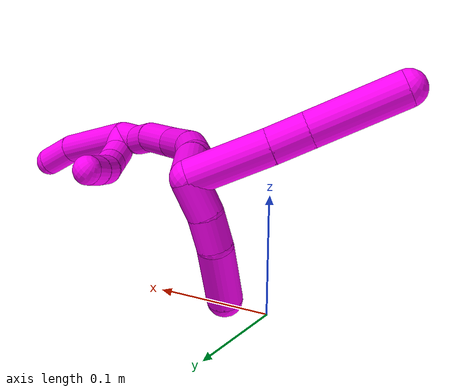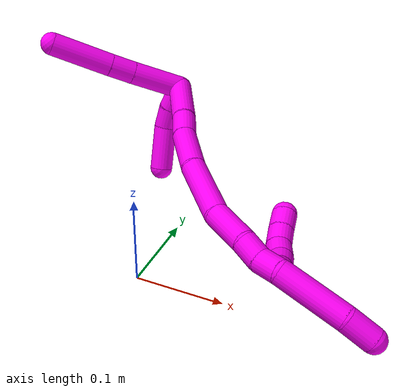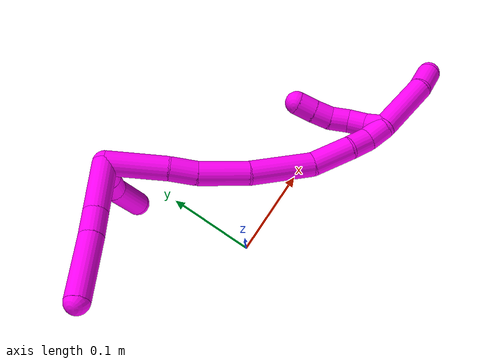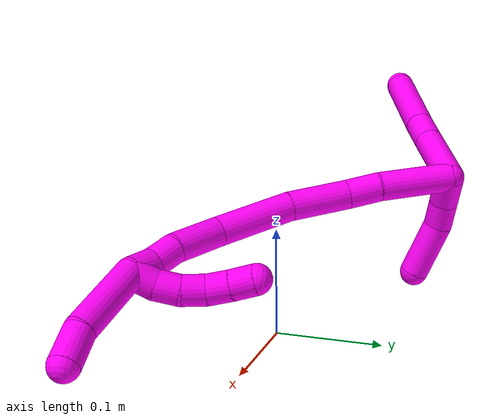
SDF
<sdf version="1.7">
 <world name="default">
  <model name="10">
   <static>0</static>
   <link name="10">
    <collision name="collision-cylinder-e_1_2_8">
     <pose>-0.000508 -0.015796 0.023423 0.593322 -0.017974 -0.005494</pose>
     <geometry><cylinder><radius>0.0125</radius><length>0.056511</length></cylinder></geometry>
     <surface>
      <friction><ode><mu>1.16</mu><mu2>1.16</mu2><slip1>0</slip1><slip2>0</slip2></ode></friction>
      <contact><ode><kp>1e+06</kp><kd>1</kd><max_vel>0</max_vel><min_depth>0.001</min_depth></ode></contact>
     </surface>
    </collision>
    <visual name="visual-cylinder-e_1_2_8">
     <pose>-0.000508 -0.015796 0.023423 0.593322 -0.017974 -0.005494</pose>
     <geometry><cylinder><radius>0.0125</radius><length>0.056511</length></cylinder></geometry>
     <material><ambient>1 0 0.964706 1</ambient></material>
    </visual>
    <collision name="collision-cylinder-e_2_8_9">
     <pose>-0.000942 -0.038829 0.058089 0.571952 0.005483 0.001612</pose>
     <geometry><cylinder><radius>0.0125</radius><length>0.026744</length></cylinder></geometry>
     <surface>
      <friction><ode><mu>1.16</mu><mu2>1.16</mu2><slip1>0</slip1><slip2>0</slip2></ode></friction>
      <contact><ode><kp>1e+06</kp><kd>1</kd><max_vel>0</max_vel><min_depth>0.001</min_depth></ode></contact>
     </surface>
    </collision>
    <visual name="visual-cylinder-e_2_8_9">
     <pose>-0.000942 -0.038829 0.058089 0.571952 0.005483 0.001612</pose>
     <geometry><cylinder><radius>0.0125</radius><length>0.026744</length></cylinder></geometry>
     <material><ambient>1 0 0.964706 1</ambient></material>
    </visual>
    <collision name="collision-cylinder-e_3_9_6">
     <pose>-0.001396 -0.063473 0.097801 0.54875 -0.015793 -0.004445</pose>
     <geometry><cylinder><radius>0.0125</radius><length>0.066745</length></cylinder></geometry>
     <surface>
      <friction><ode><mu>1.16</mu><mu2>1.16</mu2><slip1>0</slip1><slip2>0</slip2></ode></friction>
      <contact><ode><kp>1e+06</kp><kd>1</kd><max_vel>0</max_vel><min_depth>0.001</min_depth></ode></contact>
     </surface>
    </collision>
    <visual name="visual-cylinder-e_3_9_6">
     <pose>-0.001396 -0.063473 0.097801 0.54875 -0.015793 -0.004445</pose>
     <geometry><cylinder><radius>0.0125</radius><length>0.066745</length></cylinder></geometry>
     <material><ambient>1 0 0.964706 1</ambient></material>
    </visual>
    <collision name="collision-cylinder-e_1_2_10">
     <pose>-0.006923 -0.009953 -0.00612 2.1221 -0.534904 -0.911506</pose>
     <geometry><cylinder><radius>0.0125</radius><length>0.027163</length></cylinder></geometry>
     <surface>
      <friction><ode><mu>1.16</mu><mu2>1.16</mu2><slip1>0</slip1><slip2>0</slip2></ode></friction>
      <contact><ode><kp>1e+06</kp><kd>1</kd><max_vel>0</max_vel><min_depth>0.001</min_depth></ode></contact>
     </surface>
    </collision>
    <visual name="visual-cylinder-e_1_2_10">
     <pose>-0.006923 -0.009953 -0.00612 2.1221 -0.534904 -0.911506</pose>
     <geometry><cylinder><radius>0.0125</radius><length>0.027163</length></cylinder></geometry>
     <material><ambient>1 0 0.964706 1</ambient></material>
    </visual>
    <collision name="collision-cylinder-e_2_10_11">
     <pose>-0.018923 -0.027918 -0.019421 2.30152 -0.440888 -0.930084</pose>
     <geometry><cylinder><radius>0.0125</radius><length>0.023791</length></cylinder></geometry>
     <surface>
      <friction><ode><mu>1.16</mu><mu2>1.16</mu2><slip1>0</slip1><slip2>0</slip2></ode></friction>
      <contact><ode><kp>1e+06</kp><kd>1</kd><max_vel>0</max_vel><min_depth>0.001</min_depth></ode></contact>
     </surface>
    </collision>
    <visual name="visual-cylinder-e_2_10_11">
     <pose>-0.018923 -0.027918 -0.019421 2.30152 -0.440888 -0.930084</pose>
     <geometry><cylinder><radius>0.0125</radius><length>0.023791</length></cylinder></geometry>
     <material><ambient>1 0 0.964706 1</ambient></material>
    </visual>
    <collision name="collision-cylinder-e_3_11_5">
     <pose>-0.02734 -0.052692 -0.044186 2.38016 -0.136657 -0.338692</pose>
     <geometry><cylinder><radius>0.0125</radius><length>0.049045</length></cylinder></geometry>
     <surface>
      <friction><ode><mu>1.16</mu><mu2>1.16</mu2><slip1>0</slip1><slip2>0</slip2></ode></friction>
      <contact><ode><kp>1e+06</kp><kd>1</kd><max_vel>0</max_vel><min_depth>0.001</min_depth></ode></contact>
     </surface>
    </collision>
    <visual name="visual-cylinder-e_3_11_5">
     <pose>-0.02734 -0.052692 -0.044186 2.38016 -0.136657 -0.338692</pose>
     <geometry><cylinder><radius>0.0125</radius><length>0.049045</length></cylinder></geometry>
     <material><ambient>1 0 0.964706 1</ambient></material>
    </visual>
    <collision name="collision-cylinder-e_1_2_12">
     <pose>0.025633 -0.015385 -0.010108 2.15209 0.947972 1.52042</pose>
     <geometry><cylinder><radius>0.0125</radius><length>0.063116</length></cylinder></geometry>
     <surface>
      <friction><ode><mu>1.16</mu><mu2>1.16</mu2><slip1>0</slip1><slip2>0</slip2></ode></friction>
      <contact><ode><kp>1e+06</kp><kd>1</kd><max_vel>0</max_vel><min_depth>0.001</min_depth></ode></contact>
     </surface>
    </collision>
    <visual name="visual-cylinder-e_1_2_12">
     <pose>0.025633 -0.015385 -0.010108 2.15209 0.947972 1.52042</pose>
     <geometry><cylinder><radius>0.0125</radius><length>0.063116</length></cylinder></geometry>
     <material><ambient>1 0 0.964706 1</ambient></material>
    </visual>
    <collision name="collision-cylinder-e_2_12_13">
     <pose>0.061676 -0.038971 -0.025557 2.148 0.816334 1.34663</pose>
     <geometry><cylinder><radius>0.0125</radius><length>0.028575</length></cylinder></geometry>
     <surface>
      <friction><ode><mu>1.16</mu><mu2>1.16</mu2><slip1>0</slip1><slip2>0</slip2></ode></friction>
      <contact><ode><kp>1e+06</kp><kd>1</kd><max_vel>0</max_vel><min_depth>0.001</min_depth></ode></contact>
     </surface>
    </collision>
    <visual name="visual-cylinder-e_2_12_13">
     <pose>0.061676 -0.038971 -0.025557 2.148 0.816334 1.34663</pose>
     <geometry><cylinder><radius>0.0125</radius><length>0.028575</length></cylinder></geometry>
     <material><ambient>1 0 0.964706 1</ambient></material>
    </visual>
    <collision name="collision-cylinder-e_3_13_14">
     <pose>0.093183 -0.058157 -0.041522 2.33952 0.943848 1.75514</pose>
     <geometry><cylinder><radius>0.0125</radius><length>0.052101</length></cylinder></geometry>
     <surface>
      <friction><ode><mu>1.16</mu><mu2>1.16</mu2><slip1>0</slip1><slip2>0</slip2></ode></friction>
      <contact><ode><kp>1e+06</kp><kd>1</kd><max_vel>0</max_vel><min_depth>0.001</min_depth></ode></contact>
     </surface>
    </collision>
    <visual name="visual-cylinder-e_3_13_14">
     <pose>0.093183 -0.058157 -0.041522 2.33952 0.943848 1.75514</pose>
     <geometry><cylinder><radius>0.0125</radius><length>0.052101</length></cylinder></geometry>
     <material><ambient>1 0 0.964706 1</ambient></material>
    </visual>
    <collision name="collision-cylinder-e_4_14_15">
     <pose>0.139908 -0.079952 -0.07034 2.6055 0.880565 2.08597</pose>
     <geometry><cylinder><radius>0.0125</radius><length>0.066473</length></cylinder></geometry>
     <surface>
      <friction><ode><mu>1.16</mu><mu2>1.16</mu2><slip1>0</slip1><slip2>0</slip2></ode></friction>
      <contact><ode><kp>1e+06</kp><kd>1</kd><max_vel>0</max_vel><min_depth>0.001</min_depth></ode></contact>
     </surface>
    </collision>
    <visual name="visual-cylinder-e_4_14_15">
     <pose>0.139908 -0.079952 -0.07034 2.6055 0.880565 2.08597</pose>
     <geometry><cylinder><radius>0.0125</radius><length>0.066473</length></cylinder></geometry>
     <material><ambient>1 0 0.964706 1</ambient></material>
    </visual>
    <collision name="collision-cylinder-e_5_15_16">
     <pose>0.182805 -0.092146 -0.101612 3.0361 0.919905 2.92924</pose>
     <geometry><cylinder><radius>0.0125</radius><length>0.043413</length></cylinder></geometry>
     <surface>
      <friction><ode><mu>1.16</mu><mu2>1.16</mu2><slip1>0</slip1><slip2>0</slip2></ode></friction>
      <contact><ode><kp>1e+06</kp><kd>1</kd><max_vel>0</max_vel><min_depth>0.001</min_depth></ode></contact>
     </surface>
    </collision>
    <visual name="visual-cylinder-e_5_15_16">
     <pose>0.182805 -0.092146 -0.101612 3.0361 0.919905 2.92924</pose>
     <geometry><cylinder><radius>0.0125</radius><length>0.043413</length></cylinder></geometry>
     <material><ambient>1 0 0.964706 1</ambient></material>
    </visual>
    <collision name="collision-cylinder-e_6_16_17">
     <pose>0.207629 -0.09467 -0.123505 3.01307 0.704609 2.79504</pose>
     <geometry><cylinder><radius>0.0125</radius><length>0.023329</length></cylinder></geometry>
     <surface>
      <friction><ode><mu>1.16</mu><mu2>1.16</mu2><slip1>0</slip1><slip2>0</slip2></ode></friction>
      <contact><ode><kp>1e+06</kp><kd>1</kd><max_vel>0</max_vel><min_depth>0.001</min_depth></ode></contact>
     </surface>
    </collision>
    <visual name="visual-cylinder-e_6_16_17">
     <pose>0.207629 -0.09467 -0.123505 3.01307 0.704609 2.79504</pose>
     <geometry><cylinder><radius>0.0125</radius><length>0.023329</length></cylinder></geometry>
     <material><ambient>1 0 0.964706 1</ambient></material>
    </visual>
    <collision name="collision-cylinder-e_7_17_1">
     <pose>0.224053 -0.09399 -0.139404 -2.89036 0.881065 -2.61815</pose>
     <geometry><cylinder><radius>0.0125</radius><length>0.022992</length></cylinder></geometry>
     <surface>
      <friction><ode><mu>1.16</mu><mu2>1.16</mu2><slip1>0</slip1><slip2>0</slip2></ode></friction>
      <contact><ode><kp>1e+06</kp><kd>1</kd><max_vel>0</max_vel><min_depth>0.001</min_depth></ode></contact>
     </surface>
    </collision>
    <visual name="visual-cylinder-e_7_17_1">
     <pose>0.224053 -0.09399 -0.139404 -2.89036 0.881065 -2.61815</pose>
     <geometry><cylinder><radius>0.0125</radius><length>0.022992</length></cylinder></geometry>
     <material><ambient>1 0 0.964706 1</ambient></material>
    </visual>
    <collision name="collision-cylinder-e_1_1_18">
     <pose>0.223664 -0.089333 -0.148992 -2.29351 -1.1827 1.95786</pose>
     <geometry><cylinder><radius>0.0125</radius><length>0.02</length></cylinder></geometry>
     <surface>
      <friction><ode><mu>1.16</mu><mu2>1.16</mu2><slip1>0</slip1><slip2>0</slip2></ode></friction>
      <contact><ode><kp>1e+06</kp><kd>1</kd><max_vel>0</max_vel><min_depth>0.001</min_depth></ode></contact>
     </surface>
    </collision>
    <visual name="visual-cylinder-e_1_1_18">
     <pose>0.223664 -0.089333 -0.148992 -2.29351 -1.1827 1.95786</pose>
     <geometry><cylinder><radius>0.0125</radius><length>0.02</length></cylinder></geometry>
     <material><ambient>1 0 0.964706 1</ambient></material>
    </visual>
    <collision name="collision-cylinder-e_2_18_19">
     <pose>0.205774 -0.081482 -0.152065 -1.68389 -1.04201 1.14255</pose>
     <geometry><cylinder><radius>0.0125</radius><length>0.02</length></cylinder></geometry>
     <surface>
      <friction><ode><mu>1.16</mu><mu2>1.16</mu2><slip1>0</slip1><slip2>0</slip2></ode></friction>
      <contact><ode><kp>1e+06</kp><kd>1</kd><max_vel>0</max_vel><min_depth>0.001</min_depth></ode></contact>
     </surface>
    </collision>
    <visual name="visual-cylinder-e_2_18_19">
     <pose>0.205774 -0.081482 -0.152065 -1.68389 -1.04201 1.14255</pose>
     <geometry><cylinder><radius>0.0125</radius><length>0.02</length></cylinder></geometry>
     <material><ambient>1 0 0.964706 1</ambient></material>
    </visual>
    <collision name="collision-cylinder-e_3_19_20">
     <pose>0.188698 -0.071431 -0.150803 -1.2223 -1.005 0.735076</pose>
     <geometry><cylinder><radius>0.0125</radius><length>0.02</length></cylinder></geometry>
     <surface>
      <friction><ode><mu>1.16</mu><mu2>1.16</mu2><slip1>0</slip1><slip2>0</slip2></ode></friction>
      <contact><ode><kp>1e+06</kp><kd>1</kd><max_vel>0</max_vel><min_depth>0.001</min_depth></ode></contact>
     </surface>
    </collision>
    <visual name="visual-cylinder-e_3_19_20">
     <pose>0.188698 -0.071431 -0.150803 -1.2223 -1.005 0.735076</pose>
     <geometry><cylinder><radius>0.0125</radius><length>0.02</length></cylinder></geometry>
     <material><ambient>1 0 0.964706 1</ambient></material>
    </visual>
    <collision name="collision-cylinder-e_4_20_21">
     <pose>0.173858 -0.05913 -0.146461 -1.2378 -0.694348 0.50445</pose>
     <geometry><cylinder><radius>0.0125</radius><length>0.02</length></cylinder></geometry>
     <surface>
      <friction><ode><mu>1.16</mu><mu2>1.16</mu2><slip1>0</slip1><slip2>0</slip2></ode></friction>
      <contact><ode><kp>1e+06</kp><kd>1</kd><max_vel>0</max_vel><min_depth>0.001</min_depth></ode></contact>
     </surface>
    </collision>
    <visual name="visual-cylinder-e_4_20_21">
     <pose>0.173858 -0.05913 -0.146461 -1.2378 -0.694348 0.50445</pose>
     <geometry><cylinder><radius>0.0125</radius><length>0.02</length></cylinder></geometry>
     <material><ambient>1 0 0.964706 1</ambient></material>
    </visual>
    <collision name="collision-cylinder-e_5_21_4">
     <pose>0.161729 -0.044117 -0.141283 -1.23948 -0.610133 0.442026</pose>
     <geometry><cylinder><radius>0.0125</radius><length>0.02</length></cylinder></geometry>
     <surface>
      <friction><ode><mu>1.16</mu><mu2>1.16</mu2><slip1>0</slip1><slip2>0</slip2></ode></friction>
      <contact><ode><kp>1e+06</kp><kd>1</kd><max_vel>0</max_vel><min_depth>0.001</min_depth></ode></contact>
     </surface>
    </collision>
    <visual name="visual-cylinder-e_5_21_4">
     <pose>0.161729 -0.044117 -0.141283 -1.23948 -0.610133 0.442026</pose>
     <geometry><cylinder><radius>0.0125</radius><length>0.02</length></cylinder></geometry>
     <material><ambient>1 0 0.964706 1</ambient></material>
    </visual>
    <collision name="collision-cylinder-e_1_1_22">
     <pose>0.250628 -0.086053 -0.175803 -2.93581 0.533999 -2.41969</pose>
     <geometry><cylinder><radius>0.0125</radius><length>0.069578</length></cylinder></geometry>
     <surface>
      <friction><ode><mu>1.16</mu><mu2>1.16</mu2><slip1>0</slip1><slip2>0</slip2></ode></friction>
      <contact><ode><kp>1e+06</kp><kd>1</kd><max_vel>0</max_vel><min_depth>0.001</min_depth></ode></contact>
     </surface>
    </collision>
    <visual name="visual-cylinder-e_1_1_22">
     <pose>0.250628 -0.086053 -0.175803 -2.93581 0.533999 -2.41969</pose>
     <geometry><cylinder><radius>0.0125</radius><length>0.069578</length></cylinder></geometry>
     <material><ambient>1 0 0.964706 1</ambient></material>
    </visual>
    <collision name="collision-cylinder-e_2_22_3">
     <pose>0.272308 -0.077224 -0.219548 -2.95597 0.264272 -1.91971</pose>
     <geometry><cylinder><radius>0.0125</radius><length>0.030422</length></cylinder></geometry>
     <surface>
      <friction><ode><mu>1.16</mu><mu2>1.16</mu2><slip1>0</slip1><slip2>0</slip2></ode></friction>
      <contact><ode><kp>1e+06</kp><kd>1</kd><max_vel>0</max_vel><min_depth>0.001</min_depth></ode></contact>
     </surface>
    </collision>
    <visual name="visual-cylinder-e_2_22_3">
     <pose>0.272308 -0.077224 -0.219548 -2.95597 0.264272 -1.91971</pose>
     <geometry><cylinder><radius>0.0125</radius><length>0.030422</length></cylinder></geometry>
     <material><ambient>1 0 0.964706 1</ambient></material>
    </visual>
    <collision name="collision-sphere-3">
     <pose>0.276281 -0.074514 -0.233978 0 -0 0</pose>
     <geometry><sphere><radius>0.0125</radius></sphere></geometry>
     <surface>
      <friction><ode><mu>1.16</mu><mu2>1.16</mu2><slip1>0</slip1><slip2>0</slip2></ode></friction>
      <contact><ode><kp>1e+06</kp><kd>1</kd><max_vel>0</max_vel><min_depth>0.001</min_depth></ode></contact>
     </surface>
    </collision>
    <visual name="visual-sphere-3">
     <pose>0.276281 -0.074514 -0.233978 0 -0 0</pose>
     <geometry><sphere><radius>0.0125</radius></sphere></geometry>
     <material><ambient>1 0 0.964706 1</ambient></material>
    </visual>
    <collision name="collision-sphere-22">
     <pose>0.268335 -0.079934 -0.205117 0 -0 0</pose>
     <geometry><sphere><radius>0.0125</radius></sphere></geometry>
     <surface>
      <friction><ode><mu>1.16</mu><mu2>1.16</mu2><slip1>0</slip1><slip2>0</slip2></ode></friction>
      <contact><ode><kp>1e+06</kp><kd>1</kd><max_vel>0</max_vel><min_depth>0.001</min_depth></ode></contact>
     </surface>
    </collision>
    <visual name="visual-sphere-22">
     <pose>0.268335 -0.079934 -0.205117 0 -0 0</pose>
     <geometry><sphere><radius>0.0125</radius></sphere></geometry>
     <material><ambient>1 0 0.964706 1</ambient></material>
    </visual>
    <collision name="collision-sphere-4">
     <pose>0.155999 -0.036367 -0.138617 0 -0 0</pose>
     <geometry><sphere><radius>0.0125</radius></sphere></geometry>
     <surface>
      <friction><ode><mu>1.16</mu><mu2>1.16</mu2><slip1>0</slip1><slip2>0</slip2></ode></friction>
      <contact><ode><kp>1e+06</kp><kd>1</kd><max_vel>0</max_vel><min_depth>0.001</min_depth></ode></contact>
     </surface>
    </collision>
    <visual name="visual-sphere-4">
     <pose>0.155999 -0.036367 -0.138617 0 -0 0</pose>
     <geometry><sphere><radius>0.0125</radius></sphere></geometry>
     <material><ambient>1 0 0.964706 1</ambient></material>
    </visual>
    <collision name="collision-sphere-21">
     <pose>0.167459 -0.051867 -0.143949 0 -0 0</pose>
     <geometry><sphere><radius>0.0125</radius></sphere></geometry>
     <surface>
      <friction><ode><mu>1.16</mu><mu2>1.16</mu2><slip1>0</slip1><slip2>0</slip2></ode></friction>
      <contact><ode><kp>1e+06</kp><kd>1</kd><max_vel>0</max_vel><min_depth>0.001</min_depth></ode></contact>
     </surface>
    </collision>
    <visual name="visual-sphere-21">
     <pose>0.167459 -0.051867 -0.143949 0 -0 0</pose>
     <geometry><sphere><radius>0.0125</radius></sphere></geometry>
     <material><ambient>1 0 0.964706 1</ambient></material>
    </visual>
    <collision name="collision-sphere-20">
     <pose>0.180257 -0.066392 -0.148973 0 -0 0</pose>
     <geometry><sphere><radius>0.0125</radius></sphere></geometry>
     <surface>
      <friction><ode><mu>1.16</mu><mu2>1.16</mu2><slip1>0</slip1><slip2>0</slip2></ode></friction>
      <contact><ode><kp>1e+06</kp><kd>1</kd><max_vel>0</max_vel><min_depth>0.001</min_depth></ode></contact>
     </surface>
    </collision>
    <visual name="visual-sphere-20">
     <pose>0.180257 -0.066392 -0.148973 0 -0 0</pose>
     <geometry><sphere><radius>0.0125</radius></sphere></geometry>
     <material><ambient>1 0 0.964706 1</ambient></material>
    </visual>
    <collision name="collision-sphere-11">
     <pose>-0.024 -0.03593 -0.026601 0 -0 0</pose>
     <geometry><sphere><radius>0.0125</radius></sphere></geometry>
     <surface>
      <friction><ode><mu>1.16</mu><mu2>1.16</mu2><slip1>0</slip1><slip2>0</slip2></ode></friction>
      <contact><ode><kp>1e+06</kp><kd>1</kd><max_vel>0</max_vel><min_depth>0.001</min_depth></ode></contact>
     </surface>
    </collision>
    <visual name="visual-sphere-11">
     <pose>-0.024 -0.03593 -0.026601 0 -0 0</pose>
     <geometry><sphere><radius>0.0125</radius></sphere></geometry>
     <material><ambient>1 0 0.964706 1</ambient></material>
    </visual>
    <collision name="collision-sphere-10">
     <pose>-0.013847 -0.019907 -0.012241 0 -0 0</pose>
     <geometry><sphere><radius>0.0125</radius></sphere></geometry>
     <surface>
      <friction><ode><mu>1.16</mu><mu2>1.16</mu2><slip1>0</slip1><slip2>0</slip2></ode></friction>
      <contact><ode><kp>1e+06</kp><kd>1</kd><max_vel>0</max_vel><min_depth>0.001</min_depth></ode></contact>
     </surface>
    </collision>
    <visual name="visual-sphere-10">
     <pose>-0.013847 -0.019907 -0.012241 0 -0 0</pose>
     <geometry><sphere><radius>0.0125</radius></sphere></geometry>
     <material><ambient>1 0 0.964706 1</ambient></material>
    </visual>
    <collision name="collision-sphere-6">
     <pose>-0.001923 -0.080878 0.12627 0 -0 0</pose>
     <geometry><sphere><radius>0.0125</radius></sphere></geometry>
     <surface>
      <friction><ode><mu>1.16</mu><mu2>1.16</mu2><slip1>0</slip1><slip2>0</slip2></ode></friction>
      <contact><ode><kp>1e+06</kp><kd>1</kd><max_vel>0</max_vel><min_depth>0.001</min_depth></ode></contact>
     </surface>
    </collision>
    <visual name="visual-sphere-6">
     <pose>-0.001923 -0.080878 0.12627 0 -0 0</pose>
     <geometry><sphere><radius>0.0125</radius></sphere></geometry>
     <material><ambient>1 0 0.964706 1</ambient></material>
    </visual>
    <collision name="collision-sphere-9">
     <pose>-0.000869 -0.046067 0.069332 0 -0 0</pose>
     <geometry><sphere><radius>0.0125</radius></sphere></geometry>
     <surface>
      <friction><ode><mu>1.16</mu><mu2>1.16</mu2><slip1>0</slip1><slip2>0</slip2></ode></friction>
      <contact><ode><kp>1e+06</kp><kd>1</kd><max_vel>0</max_vel><min_depth>0.001</min_depth></ode></contact>
     </surface>
    </collision>
    <visual name="visual-sphere-9">
     <pose>-0.000869 -0.046067 0.069332 0 -0 0</pose>
     <geometry><sphere><radius>0.0125</radius></sphere></geometry>
     <material><ambient>1 0 0.964706 1</ambient></material>
    </visual>
    <collision name="collision-sphere-2">
     <geometry><sphere><radius>0.0125</radius></sphere></geometry>
     <surface>
      <friction><ode><mu>1.16</mu><mu2>1.16</mu2><slip1>0</slip1><slip2>0</slip2></ode></friction>
      <contact><ode><kp>1e+06</kp><kd>1</kd><max_vel>0</max_vel><min_depth>0.001</min_depth></ode></contact>
     </surface>
    </collision>
    <visual name="visual-sphere-2">
     <geometry><sphere><radius>0.0125</radius></sphere></geometry>
     <material><ambient>1 0 0.964706 1</ambient></material>
    </visual>
    <collision name="collision-sphere-19">
     <pose>0.19714 -0.07647 -0.152634 0 -0 0</pose>
     <geometry><sphere><radius>0.0125</radius></sphere></geometry>
     <surface>
      <friction><ode><mu>1.16</mu><mu2>1.16</mu2><slip1>0</slip1><slip2>0</slip2></ode></friction>
      <contact><ode><kp>1e+06</kp><kd>1</kd><max_vel>0</max_vel><min_depth>0.001</min_depth></ode></contact>
     </surface>
    </collision>
    <visual name="visual-sphere-19">
     <pose>0.19714 -0.07647 -0.152634 0 -0 0</pose>
     <geometry><sphere><radius>0.0125</radius></sphere></geometry>
     <material><ambient>1 0 0.964706 1</ambient></material>
    </visual>
    <collision name="collision-sphere-8">
     <pose>-0.001016 -0.031592 0.046845 0 -0 0</pose>
     <geometry><sphere><radius>0.0125</radius></sphere></geometry>
     <surface>
      <friction><ode><mu>1.16</mu><mu2>1.16</mu2><slip1>0</slip1><slip2>0</slip2></ode></friction>
      <contact><ode><kp>1e+06</kp><kd>1</kd><max_vel>0</max_vel><min_depth>0.001</min_depth></ode></contact>
     </surface>
    </collision>
    <visual name="visual-sphere-8">
     <pose>-0.001016 -0.031592 0.046845 0 -0 0</pose>
     <geometry><sphere><radius>0.0125</radius></sphere></geometry>
     <material><ambient>1 0 0.964706 1</ambient></material>
    </visual>
    <collision name="collision-sphere-5">
     <pose>-0.030681 -0.069453 -0.061771 0 -0 0</pose>
     <geometry><sphere><radius>0.0125</radius></sphere></geometry>
     <surface>
      <friction><ode><mu>1.16</mu><mu2>1.16</mu2><slip1>0</slip1><slip2>0</slip2></ode></friction>
      <contact><ode><kp>1e+06</kp><kd>1</kd><max_vel>0</max_vel><min_depth>0.001</min_depth></ode></contact>
     </surface>
    </collision>
    <visual name="visual-sphere-5">
     <pose>-0.030681 -0.069453 -0.061771 0 -0 0</pose>
     <geometry><sphere><radius>0.0125</radius></sphere></geometry>
     <material><ambient>1 0 0.964706 1</ambient></material>
    </visual>
    <collision name="collision-sphere-12">
     <pose>0.051265 -0.030771 -0.020217 0 -0 0</pose>
     <geometry><sphere><radius>0.0125</radius></sphere></geometry>
     <surface>
      <friction><ode><mu>1.16</mu><mu2>1.16</mu2><slip1>0</slip1><slip2>0</slip2></ode></friction>
      <contact><ode><kp>1e+06</kp><kd>1</kd><max_vel>0</max_vel><min_depth>0.001</min_depth></ode></contact>
     </surface>
    </collision>
    <visual name="visual-sphere-12">
     <pose>0.051265 -0.030771 -0.020217 0 -0 0</pose>
     <geometry><sphere><radius>0.0125</radius></sphere></geometry>
     <material><ambient>1 0 0.964706 1</ambient></material>
    </visual>
    <collision name="collision-sphere-13">
     <pose>0.072086 -0.047171 -0.030896 0 -0 0</pose>
     <geometry><sphere><radius>0.0125</radius></sphere></geometry>
     <surface>
      <friction><ode><mu>1.16</mu><mu2>1.16</mu2><slip1>0</slip1><slip2>0</slip2></ode></friction>
      <contact><ode><kp>1e+06</kp><kd>1</kd><max_vel>0</max_vel><min_depth>0.001</min_depth></ode></contact>
     </surface>
    </collision>
    <visual name="visual-sphere-13">
     <pose>0.072086 -0.047171 -0.030896 0 -0 0</pose>
     <geometry><sphere><radius>0.0125</radius></sphere></geometry>
     <material><ambient>1 0 0.964706 1</ambient></material>
    </visual>
    <collision name="collision-sphere-14">
     <pose>0.114279 -0.069142 -0.052147 0 -0 0</pose>
     <geometry><sphere><radius>0.0125</radius></sphere></geometry>
     <surface>
      <friction><ode><mu>1.16</mu><mu2>1.16</mu2><slip1>0</slip1><slip2>0</slip2></ode></friction>
      <contact><ode><kp>1e+06</kp><kd>1</kd><max_vel>0</max_vel><min_depth>0.001</min_depth></ode></contact>
     </surface>
    </collision>
    <visual name="visual-sphere-14">
     <pose>0.114279 -0.069142 -0.052147 0 -0 0</pose>
     <geometry><sphere><radius>0.0125</radius></sphere></geometry>
     <material><ambient>1 0 0.964706 1</ambient></material>
    </visual>
    <collision name="collision-sphere-15">
     <pose>0.165537 -0.090761 -0.088534 0 -0 0</pose>
     <geometry><sphere><radius>0.0125</radius></sphere></geometry>
     <surface>
      <friction><ode><mu>1.16</mu><mu2>1.16</mu2><slip1>0</slip1><slip2>0</slip2></ode></friction>
      <contact><ode><kp>1e+06</kp><kd>1</kd><max_vel>0</max_vel><min_depth>0.001</min_depth></ode></contact>
     </surface>
    </collision>
    <visual name="visual-sphere-15">
     <pose>0.165537 -0.090761 -0.088534 0 -0 0</pose>
     <geometry><sphere><radius>0.0125</radius></sphere></geometry>
     <material><ambient>1 0 0.964706 1</ambient></material>
    </visual>
    <collision name="collision-sphere-16">
     <pose>0.200073 -0.093531 -0.114691 0 -0 0</pose>
     <geometry><sphere><radius>0.0125</radius></sphere></geometry>
     <surface>
      <friction><ode><mu>1.16</mu><mu2>1.16</mu2><slip1>0</slip1><slip2>0</slip2></ode></friction>
      <contact><ode><kp>1e+06</kp><kd>1</kd><max_vel>0</max_vel><min_depth>0.001</min_depth></ode></contact>
     </surface>
    </collision>
    <visual name="visual-sphere-16">
     <pose>0.200073 -0.093531 -0.114691 0 -0 0</pose>
     <geometry><sphere><radius>0.0125</radius></sphere></geometry>
     <material><ambient>1 0 0.964706 1</ambient></material>
    </visual>
    <collision name="collision-sphere-17">
     <pose>0.215185 -0.095809 -0.132318 0 -0 0</pose>
     <geometry><sphere><radius>0.0125</radius></sphere></geometry>
     <surface>
      <friction><ode><mu>1.16</mu><mu2>1.16</mu2><slip1>0</slip1><slip2>0</slip2></ode></friction>
      <contact><ode><kp>1e+06</kp><kd>1</kd><max_vel>0</max_vel><min_depth>0.001</min_depth></ode></contact>
     </surface>
    </collision>
    <visual name="visual-sphere-17">
     <pose>0.215185 -0.095809 -0.132318 0 -0 0</pose>
     <geometry><sphere><radius>0.0125</radius></sphere></geometry>
     <material><ambient>1 0 0.964706 1</ambient></material>
    </visual>
    <collision name="collision-sphere-1">
     <pose>0.232921 -0.092172 -0.146489 0 -0 0</pose>
     <geometry><sphere><radius>0.0125</radius></sphere></geometry>
     <surface>
      <friction><ode><mu>1.16</mu><mu2>1.16</mu2><slip1>0</slip1><slip2>0</slip2></ode></friction>
      <contact><ode><kp>1e+06</kp><kd>1</kd><max_vel>0</max_vel><min_depth>0.001</min_depth></ode></contact>
     </surface>
    </collision>
    <visual name="visual-sphere-1">
     <pose>0.232921 -0.092172 -0.146489 0 -0 0</pose>
     <geometry><sphere><radius>0.0125</radius></sphere></geometry>
     <material><ambient>1 0 0.964706 1</ambient></material>
    </visual>
    <collision name="collision-sphere-18">
     <pose>0.214408 -0.086495 -0.151495 0 -0 0</pose>
     <geometry><sphere><radius>0.0125</radius></sphere></geometry>
     <surface>
      <friction><ode><mu>1.16</mu><mu2>1.16</mu2><slip1>0</slip1><slip2>0</slip2></ode></friction>
      <contact><ode><kp>1e+06</kp><kd>1</kd><max_vel>0</max_vel><min_depth>0.001</min_depth></ode></contact>
     </surface>
    </collision>
    <visual name="visual-sphere-18">
     <pose>0.214408 -0.086495 -0.151495 0 -0 0</pose>
     <geometry><sphere><radius>0.0125</radius></sphere></geometry>
     <material><ambient>1 0 0.964706 1</ambient></material>
    </visual>
    <inertial>
     <pose>0.104183 -0.05831 -0.061065 0 -0 0</pose>
     <mass>0.75</mass>
     <inertia>
      <ixx>5.3e-05</ixx>
      <ixy>0</ixy>
      <ixz>0</ixz>
      <iyy>0.000123</iyy>
      <iyz>0</iyz>
      <izz>-2.7e-05</izz>
     </inertia>
    </inertial>
   </link>
   <pose>-0.019405 0.15142 0.155856 0.529444 -0.485298 -0.795236</pose>
  </model>
 </world>
</sdf>
